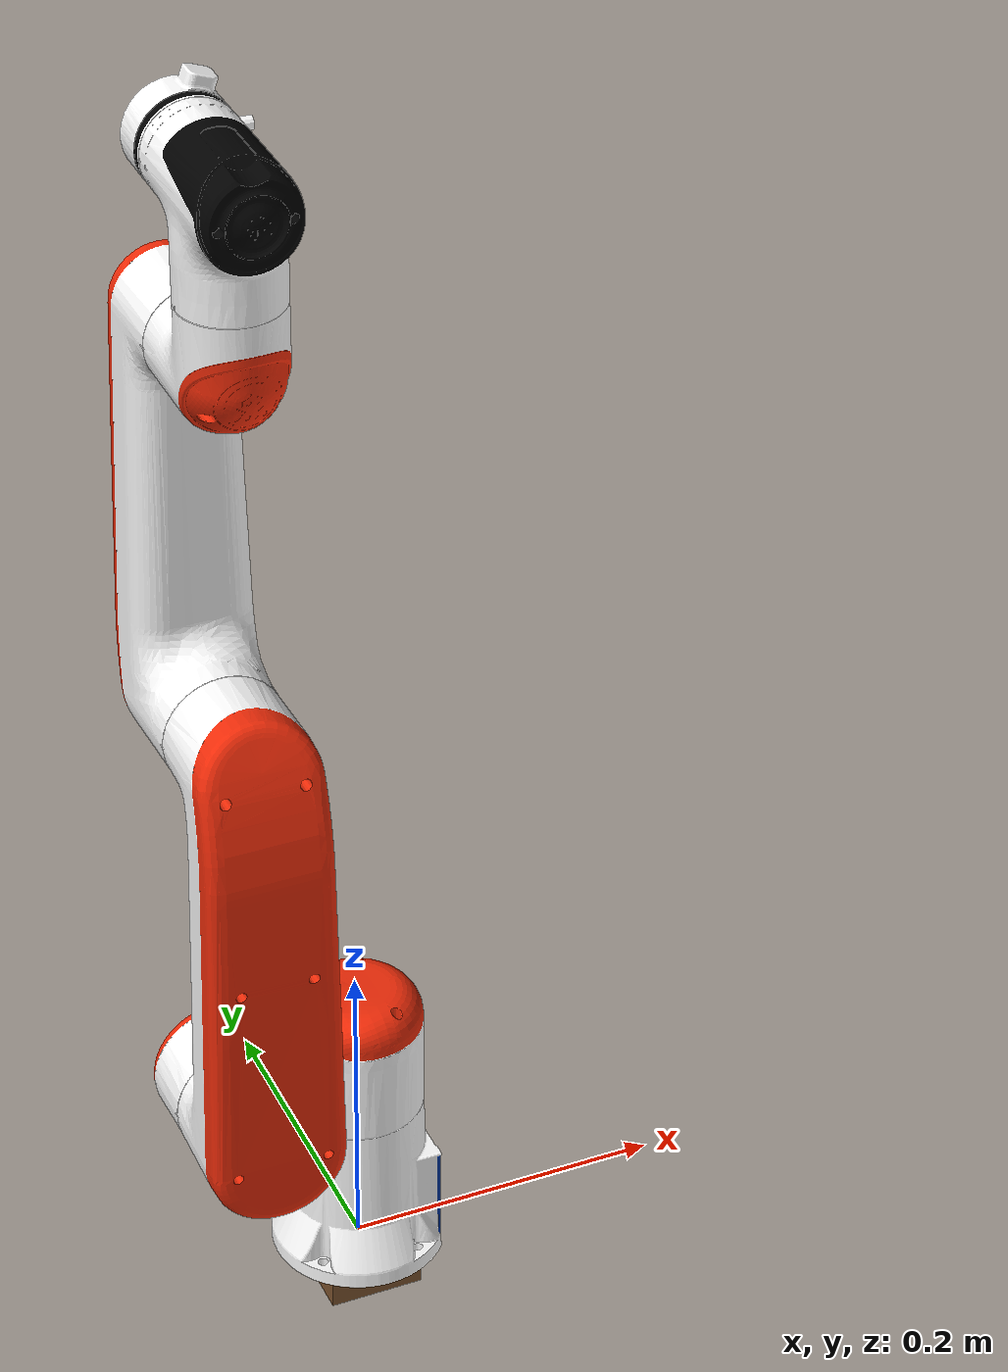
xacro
<?xml version='1.0' encoding='UTF-8'?>
<robot xmlns:xacro="http://www.ros.org/wiki/xacro" name="rm_eco65">
  <!-- arg link6_type-->
  <xacro:arg name="link6_type" default="Link6"/>
  <!-- arg->property-->
  <xacro:property name="link6_type" value="$(arg link6_type)"/>
  <xacro:include filename="$(find rm_description)/urdf/ECO65/rm_eco65.transmission.xacro"/>
  <xacro:include filename="$(find rm_description)/urdf/ECO65/rm_eco65.gazebo.xacro"/>
  <!-- Inertial matrix-->
  <xacro:macro name="inertial_matrix" params="mass">
    <inertial>
      <mass value="${mass}"/>
      <inertia ixx="1.0" ixy="0.0" ixz="0.0" iyy="0.5" iyz="0.0" izz="1.0"/>
    </inertial>
  </xacro:macro>
  <xacro:macro name="Box_inertial_matrix" params="m l w h">
    <inertial>
      <mass value="${m}"/>
      <inertia ixx="${m*(h*h + l*l)/12}" ixy="0" ixz="0" iyy="${m*(w*w + l*l)/12}" iyz="0" izz="${m*(w*w + h*h)/12}"/>
    </inertial>
  </xacro:macro>
  <link name="dummy">
    </link>
  <joint name="dummy_joint" type="fixed">
    <parent link="dummy"/>
    <child link="baselink"/>
  </joint>
  <!-- ///////////////////////////////////////   bottom_joint   //////////////////////////////////////////-->
  <joint name="bottom_joint" type="fixed">
    <origin xyz="0 0 0" rpy="0 0 0"/>
    <parent link="baselink"/>
    <child link="bottom_link"/>
  </joint>
  <link name="bottom_link">
    <visual>
      <origin xyz=" 0 0 -0.02"  rpy="0 0 0"/>
      <geometry>
        <box size="0.06 0.06 0.02" />
      </geometry>
      <material name="Brown" />
    </visual>
    <collision>
      <origin xyz="0 0 0.01" rpy="0 0 0"/>
      <geometry>
        <box size="0.06 0.06 0.02"/>
      </geometry>
    </collision>
    <xacro:Box_inertial_matrix m="500" l="1" w="1" h="0.02"/>
  </link>
  <link name="baselink">
    <inertial>
      <origin rpy="0 0 0" xyz="0.003036 -0.000732 0.035587"/>
      <mass value="0.379"/>
      <inertia ixx="0.00052904" ixy="6.208e-06" ixz="-4.25e-05" iyy="0.000554542" iyz="7.765e-06" izz="0.000472967"/>
    </inertial>
    <visual>
      <origin rpy="0 0 0" xyz="0 0 0"/>
      <geometry>
        <mesh filename="package://rm_description/meshes/dae/eco65/base_link.dae"/>
      </geometry>
    </visual>
    <collision>
      <origin xyz="0 0 0" rpy="0 0 0"/>
      <geometry>
        <mesh filename="package://rm_description/meshes/ECO65/baselink.STL"/>
      </geometry>
    </collision>
  </link>
  <link name="Link1">
    <inertial>
      <origin rpy="0 0 0" xyz="-0.011054685 2.7361459e-05 -0.03347252"/>
      <mass value="1.50782"/>
      <inertia ixx="0.0019588448" ixy="-2.3338144e-05" ixz="0.00053244189" iyy="0.0031016399" iyz="9.1355063e-06" izz="0.002425702"/>
    </inertial>
    <visual>
      <origin rpy="0 0 0" xyz="0 0 0"/>
      <geometry>
        <mesh filename="package://rm_description/meshes/dae/eco65/link_1.dae"/>
      </geometry>
    </visual>
    <collision>
      <origin xyz="0 0 0" rpy="0 0 0"/>
      <geometry>
        <mesh filename="package://rm_description/meshes/ECO65/Link1.STL"/>
      </geometry>
    </collision>
  </link>
  <joint name="joint1" type="revolute">
    <origin xyz="0 0 0.1625" rpy="0 0 0"/>
    <parent link="baselink"/>
    <child link="Link1"/>
    <axis xyz="0 0 1"/>
    <limit effort="60" lower="-3.106686" upper="3.106686" velocity="3.141593"/>
  </joint>
  <link name="Link2">
    <inertial>
      <origin rpy="0 0 0" xyz="-1.1827560982036e-05 0.0581820316859641 0.0523635875292498"/>
      <mass value="2.0227481"/>
      <inertia ixx="0.0173147479782545" ixy="-6.2090363142666e-06" ixz="2.96020913640401e-06" iyy="0.00227460292023923" iyz="-0.00144144918722487" izz="0.0172255442015063"/>
    </inertial>
    <visual>
      <origin rpy="3.14158898038469 7.34641020661009e-06 1.5707963267814" xyz="0 0 0"/>
      <geometry>
        <mesh filename="package://rm_description/meshes/dae/eco65/link_2.dae"/>
      </geometry>
    </visual>
    <collision>
      <origin rpy="3.14158898038469 7.34641020661009e-06 1.5707963267814" xyz="0 0 0"/>
      <geometry>
        <mesh filename="package://rm_description/meshes/ECO65/Link2.STL"/>
      </geometry>
    </collision>
  </link>
  <joint name="joint2" type="revolute">
    <origin rpy="1.5708 0 0" xyz="-0.086 0 0"/>
    <parent link="Link1"/>
    <child link="Link2"/>
    <axis xyz="3.67320510324953e-06 -7.3464102065635e-06 -0.999999999966269"/>
    <limit effort="60" lower="-3.106686" upper="2.356194" velocity="3.141593"/>
  </joint>
  <link name="Link3">
    <inertial>
      <origin rpy="0 0 0" xyz="0.0927608650369262 -9.35058669887521e-05 0.00181173169117229"/>
      <mass value="1.8858232"/>
      <inertia ixx="0.00191652381683187" ixy="-3.36456196501919e-06" ixz="-0.00169426703402793" iyy="0.0224831040748002" iyz="4.49340801680471e-06" izz="0.0218928120083679"/>
    </inertial>
    <visual>
      <origin rpy="-1.10196153102445e-05 -7.34638322152925e-06 3.67327256545311e-06" xyz="0 0 0"/>
      <geometry>
        <mesh filename="package://rm_description/meshes/dae/eco65/link_3.dae"/>
      </geometry>
    </visual>
    <collision>
      <origin rpy="-1.10196153102445e-05 -7.34638322152925e-06 3.67327256545311e-06" xyz="0 0 0"/>
      <geometry>
        <mesh filename="package://rm_description/meshes/ECO65/Link3.STL"/>
      </geometry>
    </collision>
  </link>
  <joint name="joint3" type="revolute">
    <origin rpy="-3.14158530717959 0 1.5708" xyz="3.50802442650178e-12 0.259999999992984 -1.9100666536913e-06"/>
    <parent link="Link2"/>
    <child link="Link3"/>
    <axis xyz="-7.34642369894967e-06 1.101958832465e-05 0.999999999912299"/>
    <limit effort="30" lower="-2.792527" upper="2.530727" velocity="3.926991"/>
  </joint>
  <link name="Link4">
    <inertial>
      <origin rpy="0 0 0" xyz="-4.01148883191065e-05 -0.0349601672193299 0.00380178317316994"/>
      <mass value="0.57008114"/>
      <inertia ixx="0.000497615349667958" ixy="5.35705039856691e-07" ixz="6.17233202862662e-07" iyy="0.000316732930736851" iyz="-7.576478576108e-05" izz="0.000466587199595189"/>
    </inertial>
    <visual>
      <origin rpy="-7.3463427445208e-06 1.10196422946629e-05 3.67319161125999e-06" xyz="0 0 0"/>
      <geometry>
        <mesh filename="package://rm_description/meshes/dae/eco65/link_4.dae"/>
      </geometry>
    </visual>
    <collision>
      <origin rpy="-7.3463427445208e-06 1.10196422946629e-05 3.67319161125999e-06" xyz="0 0 0"/>
      <geometry>
        <mesh filename="package://rm_description/meshes/ECO65/Link4.STL"/>
      </geometry>
    </collision>
  </link>
  <joint name="joint4" type="revolute">
    <origin rpy="0 0 1.5708" xyz="0.240000432549332 2.32752055130155e-07 -0.0588782368628631"/>
    <parent link="Link3"/>
    <child link="Link4"/>
    <axis xyz="1.10196153094966e-05 7.34638322169204e-06 0.999999999912299"/>
    <limit effort="10" lower="-3.106686" upper="3.106686" velocity="3.926991"/>
  </joint>
  <link name="Link5">
    <inertial>
      <origin rpy="0 0 0" xyz="-3.94947255713416e-05 0.0226471863250741 -0.00736581902916809"/>
      <mass value="0.64138580"/>
      <inertia ixx="0.000623392164126553" ixy="-5.34181904997698e-07" ixz="-5.63337361425283e-07" iyy="0.000393373805621096" iyz="-0.000113396956738583" izz="0.00055741652025235"/>
    </inertial>
    <visual>
      <origin rpy="-7.34638322158019e-06 3.67315113369848e-06 -1.10196557870313e-05" xyz="0 0 0"/>
      <geometry>
        <mesh filename="package://rm_description/meshes/dae/eco65/link_5.dae"/>
      </geometry>
    </visual>
    <collision>
      <origin rpy="-7.34638322158019e-06 3.67315113369848e-06 -1.10196557870313e-05" xyz="0 0 0"/>
      <geometry>
        <mesh filename="package://rm_description/meshes/ECO65/Link5.STL"/>
      </geometry>
    </collision>
  </link>
  <joint name="joint5" type="revolute">
    <origin rpy="1.5708 0 0" xyz="4.04059982175579e-07 -0.10999999999629 8.08097701837738e-07"/>
    <parent link="Link4"/>
    <child link="Link5"/>
    <axis xyz="3.67323208790056e-06 7.34634274417768e-06 0.999999999966269"/>
    <limit effort="10" lower="-3.106686" upper="3.106686" velocity="3.926991"/>
  </joint>
  <xacro:if value="${ link6_type =='Link6' }">
    <link name="Link6">
      <inertial>
        <origin rpy="0 0 0" xyz="0.000447725707649944 -0.000213552855705973 -0.0103357983658304"/>
        <mass value="0.085705209"/>
        <inertia ixx="3.30270919354927e-05" ixy="-2.54214741276868e-06" ixz="1.02639934585639e-07" iyy="3.02066550894742e-05" iyz="-8.39420734887784e-08" izz="5.14596739750329e-05"/>
      </inertial>
      <visual>
        <origin rpy="-7.3463427445208e-06 1.10196422946629e-05 3.67319161125999e-06" xyz="0 0 0"/>
        <geometry>
          <mesh filename="package://rm_description/meshes/dae/eco65/link_6.dae"/>
        </geometry>
      </visual>
      <collision>
        <origin rpy="-7.3463427445208e-06 1.10196422946629e-05 3.67319161125999e-06" xyz="0 0 0"/>
        <geometry>
          <mesh filename="package://rm_description/meshes/ECO65/Link6.STL"/>
        </geometry>
      </collision>
    </link>
    <joint name="joint6" type="revolute">
      <origin rpy="-1.5708 0 0" xyz="8.76060489767413e-07 0.0794999999930277 -5.84037466108757e-07"/>
      <parent link="Link5"/>
      <child link="Link6"/>
      <axis xyz="1.10196153094966e-05 7.34638322169204e-06 0.999999999912299"/>
      <limit effort="10" lower="-6.283185" upper="6.283185" velocity="3.926991"/>
    </joint>
  </xacro:if>
  <xacro:if value="${ link6_type =='Link6_6fb'}">
    <link name="Link6">
      <inertial>
        <origin rpy="0 0 0" xyz="0.000447725707649944 -0.000213552855705973 -0.0103357983658304"/>
        <mass value="0.085705209"/>
        <inertia ixx="3.30270919354927e-05" ixy="-2.54214741276868e-06" ixz="1.02639934585639e-07" iyy="3.02066550894742e-05" iyz="-8.39420734887784e-08" izz="5.14596739750329e-05"/>
      </inertial>
      <visual>
        <origin rpy="-7.3463427445208e-06 1.10196422946629e-05 3.67319161125999e-06" xyz="0 0 0"/>
        <geometry>
          <mesh filename="package://rm_description/meshes/dae/eco65/link_6_fb.dae"/>
        </geometry>
      </visual>
      <collision>
        <origin rpy="-7.3463427445208e-06 1.10196422946629e-05 3.67319161125999e-06" xyz="0 0 0"/>
        <geometry>
          <mesh filename="package://rm_description/meshes/ECO65/Link6_6fb.STL"/>
        </geometry>
      </collision>
    </link>
    <joint name="joint6" type="revolute">
      <origin rpy="-1.5708 0 0" xyz="1.06559810516363e-06 0.0966999999915193 -7.1039525751845e-07"/>
      <parent link="Link5"/>
      <child link="Link6"/>
      <axis xyz="-1.10196153094966e-05 -7.34638322169204e-06 -0.999999999912299"/>
      <limit effort="10" lower="-6.283185" upper="6.283185" velocity="3.926991"/>
    </joint>
  </xacro:if>
  <!-- Transmissions for ROS Control-->
  <xacro:macro name="transmission_block" params="joint_name">
    <transmission name="tran1">
      <type>transmission_interface/SimpleTransmission</type>
      <joint name="${joint_name}">
        <hardwareInterface>hardware_interface/PositionJointInterface</hardwareInterface>
      </joint>
      <actuator name="motor1">
        <hardwareInterface>hardware_interface/PositionJointInterface</hardwareInterface>
        <mechanicalReduction>1</mechanicalReduction>
      </actuator>
    </transmission>
  </xacro:macro>
  <xacro:transmission_block joint_name="joint1"/>
  <xacro:transmission_block joint_name="joint2"/>
  <xacro:transmission_block joint_name="joint3"/>
  <xacro:transmission_block joint_name="joint4"/>
  <xacro:transmission_block joint_name="joint5"/>
  <xacro:transmission_block joint_name="joint6"/>
  <!-- ros_control plugin-->
  <gazebo>
    <plugin name="gazebo_ros_control" filename="libgazebo_ros_control.so">
      <robotNamespace>/arm</robotNamespace>
      <robotSimType>gazebo_ros_control/DefaultRobotHWSim</robotSimType>
      <legacyModeNS>true</legacyModeNS>
    </plugin>
  </gazebo>
</robot>
